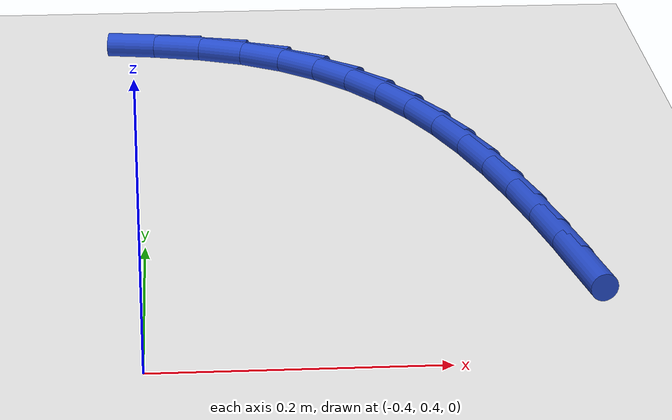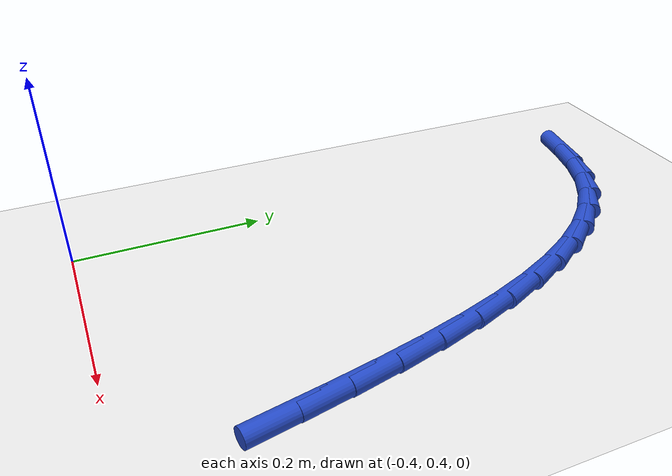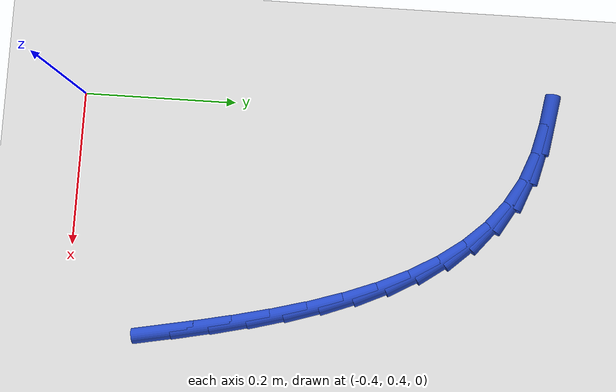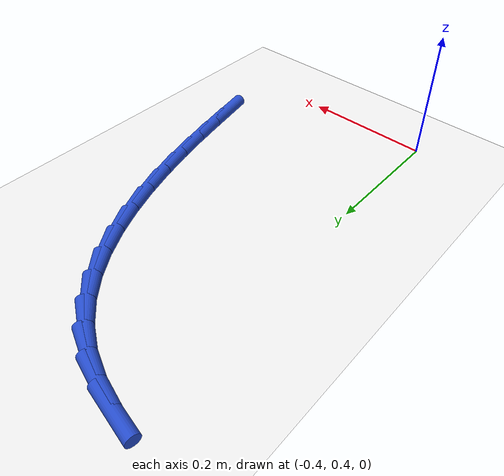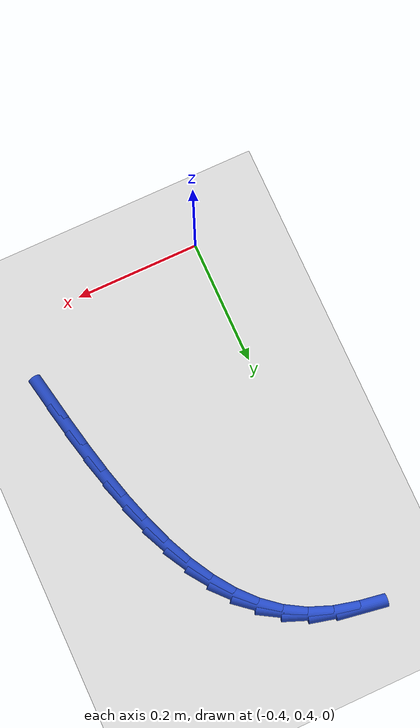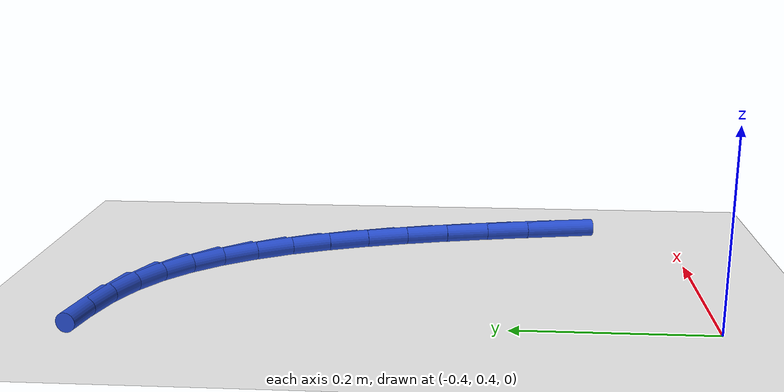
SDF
<sdf version="1.6">
 <world name="default">
  <model name="ground_plane">
   <static>1</static>
   <link name="link">
    <collision name="collision">
     <geometry><plane><normal>0 0 1</normal><size>100 100</size></plane></geometry>
     <surface><friction><ode><mu>100</mu><mu2>50</mu2></ode></friction></surface>
    </collision>
    <visual name="visual">
     <cast_shadows>0</cast_shadows>
     <geometry><plane><normal>0 0 1</normal><size>100 100</size></plane></geometry>
     <material>
      <script><uri>file://media/materials/scripts/gazebo.material</uri><name>Gazebo/WhiteGlow</name></script>
     </material>
    </visual>
   </link>
  </model>
  <model name="line">
   <link name="link_12">
    <pose>-0.0949073615439002 0.5297328288623668 0.01 0 1.57 -1.3805012895272004</pose>
    <collision name="collision">
     <geometry><cylinder><radius>0.01</radius><length>0.08</length></cylinder></geometry>
    </collision>
    <visual name="visual">
     <material>
      <script><name>Gazebo/Blue</name><uri>file://media/materials/scripts/gazebo.material</uri></script>
     </material>
     <geometry><cylinder><radius>0.01</radius><length>0.08</length></cylinder></geometry>
    </visual>
   </link>
   <link name="link_13">
    <pose>-0.10425779806839068 0.5782748014107995 0.01 0 1.57 -1.3632364919898656</pose>
    <collision name="collision">
     <geometry><cylinder><radius>0.01</radius><length>0.08</length></cylinder></geometry>
    </collision>
    <visual name="visual">
     <material>
      <script><name>Gazebo/Blue</name><uri>file://media/materials/scripts/gazebo.material</uri></script>
     </material>
     <geometry><cylinder><radius>0.01</radius><length>0.08</length></cylinder></geometry>
    </visual>
   </link>
   <link name="link_14">
    <pose>-0.11437519989626957 0.6263173009926324 0.01 0 1.57 -1.3382739933865464</pose>
    <collision name="collision">
     <geometry><cylinder><radius>0.01</radius><length>0.08</length></cylinder></geometry>
    </collision>
    <visual name="visual">
     <material>
      <script><name>Gazebo/Blue</name><uri>file://media/materials/scripts/gazebo.material</uri></script>
     </material>
     <geometry><cylinder><radius>0.01</radius><length>0.08</length></cylinder></geometry>
    </visual>
   </link>
   <link name="link_15">
    <pose>-0.1255321430277429 0.6734316648937018 0.01 0 1.57 -1.3047533090541956</pose>
    <collision name="collision">
     <geometry><cylinder><radius>0.01</radius><length>0.08</length></cylinder></geometry>
    </collision>
    <visual name="visual">
     <material>
      <script><name>Gazebo/Blue</name><uri>file://media/materials/scripts/gazebo.material</uri></script>
     </material>
     <geometry><cylinder><radius>0.01</radius><length>0.08</length></cylinder></geometry>
    </visual>
   </link>
   <link name="link_16">
    <pose>-0.1380012034630167 0.7191892303998441 0.01 0 1.57 -1.261450714936021</pose>
    <collision name="collision">
     <geometry><cylinder><radius>0.01</radius><length>0.08</length></cylinder></geometry>
    </collision>
    <visual name="visual">
     <material>
      <script><name>Gazebo/Blue</name><uri>file://media/materials/scripts/gazebo.material</uri></script>
     </material>
     <geometry><cylinder><radius>0.01</radius><length>0.08</length></cylinder></geometry>
    </visual>
   </link>
   <link name="link_17">
    <pose>-0.1520549572022971 0.763161334796896 0.01 0 1.57 -1.2067500142468197</pose>
    <collision name="collision">
     <geometry><cylinder><radius>0.01</radius><length>0.08</length></cylinder></geometry>
    </collision>
    <visual name="visual">
     <material>
      <script><name>Gazebo/Blue</name><uri>file://media/materials/scripts/gazebo.material</uri></script>
     </material>
     <geometry><cylinder><radius>0.01</radius><length>0.08</length></cylinder></geometry>
    </visual>
   </link>
   <link name="link_18">
    <pose>-0.16796598024579013 0.8049193153706937 0.01 0 1.57 -1.1386477771274877</pose>
    <collision name="collision">
     <geometry><cylinder><radius>0.01</radius><length>0.08</length></cylinder></geometry>
    </collision>
    <visual name="visual">
     <material>
      <script><name>Gazebo/Blue</name><uri>file://media/materials/scripts/gazebo.material</uri></script>
     </material>
     <geometry><cylinder><radius>0.01</radius><length>0.08</length></cylinder></geometry>
    </visual>
   </link>
   <link name="link_19">
    <pose>-0.1860068485937018 0.8440345094070736 0.01 0 1.57 -1.0548588748669203</pose>
    <collision name="collision">
     <geometry><cylinder><radius>0.01</radius><length>0.08</length></cylinder></geometry>
    </collision>
    <visual name="visual">
     <material>
      <script><name>Gazebo/Blue</name><uri>file://media/materials/scripts/gazebo.material</uri></script>
     </material>
     <geometry><cylinder><radius>0.01</radius><length>0.08</length></cylinder></geometry>
    </visual>
   </link>
   <link name="link_20">
    <pose>-0.2064501382462383 0.8800782541918724 0.01 0 1.57 -0.9531390409509436</pose>
    <collision name="collision">
     <geometry><cylinder><radius>0.01</radius><length>0.08</length></cylinder></geometry>
    </collision>
    <visual name="visual">
     <material>
      <script><name>Gazebo/Blue</name><uri>file://media/materials/scripts/gazebo.material</uri></script>
     </material>
     <geometry><cylinder><radius>0.01</radius><length>0.08</length></cylinder></geometry>
    </visual>
   </link>
   <link name="link_21">
    <pose>-0.22956842520360554 0.912621887010926 0.01 0 1.57 -0.8319804685462079</pose>
    <collision name="collision">
     <geometry><cylinder><radius>0.01</radius><length>0.08</length></cylinder></geometry>
    </collision>
    <visual name="visual">
     <material>
      <script><name>Gazebo/Blue</name><uri>file://media/materials/scripts/gazebo.material</uri></script>
     </material>
     <geometry><cylinder><radius>0.01</radius><length>0.08</length></cylinder></geometry>
    </visual>
   </link>
   <link name="link_22">
    <pose>-0.25563428546600975 0.9412367451500712 0.01 0 1.57 -0.691756756604518</pose>
    <collision name="collision">
     <geometry><cylinder><radius>0.01</radius><length>0.08</length></cylinder></geometry>
    </collision>
    <visual name="visual">
     <material>
      <script><name>Gazebo/Blue</name><uri>file://media/materials/scripts/gazebo.material</uri></script>
     </material>
     <geometry><cylinder><radius>0.01</radius><length>0.08</length></cylinder></geometry>
    </visual>
   </link>
   <link name="link_23">
    <pose>-0.2849202950336569 0.9654941658951444 0.01 0 1.57 -0.5360130160347677</pose>
    <collision name="collision">
     <geometry><cylinder><radius>0.01</radius><length>0.08</length></cylinder></geometry>
    </collision>
    <visual name="visual">
     <material>
      <script><name>Gazebo/Blue</name><uri>file://media/materials/scripts/gazebo.material</uri></script>
     </material>
     <geometry><cylinder><radius>0.01</radius><length>0.08</length></cylinder></geometry>
    </visual>
   </link>
   <link name="link_24">
    <pose>-0.31769902990675286 0.9849654865319818 0.01 0 1.57 -0.3739385669005846</pose>
    <collision name="collision">
     <geometry><cylinder><radius>0.01</radius><length>0.08</length></cylinder></geometry>
    </collision>
    <visual name="visual">
     <material>
      <script><name>Gazebo/Blue</name><uri>file://media/materials/scripts/gazebo.material</uri></script>
     </material>
     <geometry><cylinder><radius>0.01</radius><length>0.08</length></cylinder></geometry>
    </visual>
   </link>
   <link name="link_25">
    <pose>-0.35420394141933365 0.9992900573927145 0.01 0 1.57 -0.24272672618426147</pose>
    <collision name="collision">
     <geometry><cylinder><radius>0.01</radius><length>0.08</length></cylinder></geometry>
    </collision>
    <visual name="visual">
     <material>
      <script><name>Gazebo/Blue</name><uri>file://media/materials/scripts/gazebo.material</uri></script>
     </material>
     <geometry><cylinder><radius>0.01</radius><length>0.08</length></cylinder></geometry>
    </visual>
   </link>
   <link name="link_26">
    <pose>-0.3940631367904359 1.0091595393170696 0.01 0 1.57 -0.1622385226868523</pose>
    <collision name="collision">
     <geometry><cylinder><radius>0.01</radius><length>0.08</length></cylinder></geometry>
    </collision>
    <visual name="visual">
     <material>
      <script><name>Gazebo/Blue</name><uri>file://media/materials/scripts/gazebo.material</uri></script>
     </material>
     <geometry><cylinder><radius>0.01</radius><length>0.08</length></cylinder></geometry>
    </visual>
   </link>
  </model>
 </world>
</sdf>
